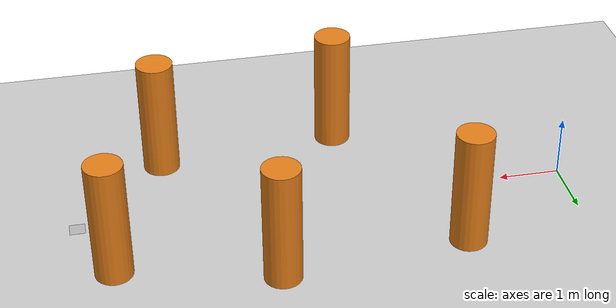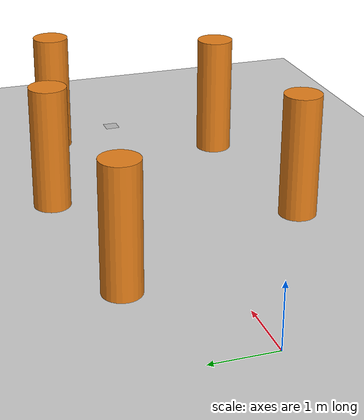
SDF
<?xml version="1.0" encoding="UTF-8"?>
<sdf version="1.9">
  <world name="obstacle_course">
    <physics type="ode">
      <max_step_size>0.004</max_step_size>
      <real_time_factor>1.0</real_time_factor>
      <real_time_update_rate>250</real_time_update_rate>
    </physics>
    <gravity>0 0 -9.8</gravity>
    <magnetic_field>6e-06 2.3e-05 -4.2e-05</magnetic_field>
    <atmosphere type="adiabatic"/>
    <scene>
      <grid>false</grid>
      <ambient>0.4 0.4 0.4 1</ambient>
      <background>0.7 0.7 0.7 1</background>
      <shadows>true</shadows>
    </scene>

    <model name="ground_plane">
      <static>true</static>
      <link name="link">
        <collision name="collision">
          <geometry>
            <plane>
              <normal>0 0 1</normal>
              <size>1 1</size>
            </plane>
          </geometry>
          <surface>
            <friction><ode/></friction>
            <bounce/>
            <contact/>
          </surface>
        </collision>
        <visual name="visual">
          <geometry>
            <plane>
              <normal>0 0 1</normal>
              <size>500 500</size>
            </plane>
          </geometry>
          <material>
            <ambient>0.8 0.8 0.8 1</ambient>
            <diffuse>0.8 0.8 0.8 1</diffuse>
            <specular>0.8 0.8 0.8 1</specular>
          </material>
        </visual>
        <pose>0 0 0 0 0 0</pose>
        <inertial>
          <pose>0 0 0 0 0 0</pose>
          <mass>1</mass>
          <inertia><ixx>1</ixx><ixy>0</ixy><ixz>0</ixz><iyy>1</iyy><iyz>0</iyz><izz>1</izz></inertia>
        </inertial>
        <enable_wind>false</enable_wind>
      </link>
      <pose>0 0 0 0 0 0</pose>
      <self_collide>false</self_collide>
    </model>

    <light name="sunUTC" type="directional">
      <pose>0 0 500 0 0 0</pose>
      <cast_shadows>true</cast_shadows>
      <intensity>1</intensity>
      <direction>0.001 0.625 -0.78</direction>
      <diffuse>0.904 0.904 0.904 1</diffuse>
      <specular>0.271 0.271 0.271 1</specular>
      <attenuation>
        <range>2000</range>
        <linear>0</linear>
        <constant>1</constant>
        <quadratic>0</quadratic>
      </attenuation>
      <spot>
        <inner_angle>0</inner_angle>
        <outer_angle>0</outer_angle>
        <falloff>0</falloff>
      </spot>
    </light>

    <spherical_coordinates>
      <surface_model>EARTH_WGS84</surface_model>
      <world_frame_orientation>ENU</world_frame_orientation>
      <latitude_deg>47.397971057728974</latitude_deg>
      <longitude_deg>8.546163739800146</longitude_deg>
      <elevation>0</elevation>
    </spherical_coordinates>

    <model name="pylon_1">
      <static>true</static>
      <pose>2 1.5 1 0 0 0</pose>
      <link name="link">
        <collision name="collision">
          <geometry>
            <cylinder><radius>0.3</radius><length>2</length></cylinder>
          </geometry>
          <surface>
            <friction><ode/></friction>
            <bounce/>
            <contact/>
          </surface>
        </collision>
        <visual name="visual">
          <geometry>
            <cylinder><radius>0.3</radius><length>2</length></cylinder>
          </geometry>
          <material>
            <ambient>0.9 0.5 0.1 1</ambient>
            <diffuse>0.9 0.5 0.1 1</diffuse>
            <specular>0.9 0.5 0.1 1</specular>
          </material>
        </visual>
      </link>
    </model>

    <model name="pylon_2">
      <static>true</static>
      <pose>3.5 -1.8 1 0 0 0</pose>
      <link name="link">
        <collision name="collision">
          <geometry>
            <cylinder><radius>0.3</radius><length>2</length></cylinder>
          </geometry>
          <surface>
            <friction><ode/></friction>
            <bounce/>
            <contact/>
          </surface>
        </collision>
        <visual name="visual">
          <geometry>
            <cylinder><radius>0.3</radius><length>2</length></cylinder>
          </geometry>
          <material>
            <ambient>0.9 0.5 0.1 1</ambient>
            <diffuse>0.9 0.5 0.1 1</diffuse>
            <specular>0.9 0.5 0.1 1</specular>
          </material>
        </visual>
      </link>
    </model>

    <model name="pylon_3">
      <static>true</static>
      <pose>5 1.8 1 0 0 0</pose>
      <link name="link">
        <collision name="collision">
          <geometry>
            <cylinder><radius>0.3</radius><length>2</length></cylinder>
          </geometry>
          <surface>
            <friction><ode/></friction>
            <bounce/>
            <contact/>
          </surface>
        </collision>
        <visual name="visual">
          <geometry>
            <cylinder><radius>0.3</radius><length>2</length></cylinder>
          </geometry>
          <material>
            <ambient>0.9 0.5 0.1 1</ambient>
            <diffuse>0.9 0.5 0.1 1</diffuse>
            <specular>0.9 0.5 0.1 1</specular>
          </material>
        </visual>
      </link>
    </model>

    <model name="pylon_4">
      <static>true</static>
      <pose>6.5 -1.5 1 0 0 0</pose>
      <link name="link">
        <collision name="collision">
          <geometry>
            <cylinder><radius>0.3</radius><length>2</length></cylinder>
          </geometry>
          <surface>
            <friction><ode/></friction>
            <bounce/>
            <contact/>
          </surface>
        </collision>
        <visual name="visual">
          <geometry>
            <cylinder><radius>0.3</radius><length>2</length></cylinder>
          </geometry>
          <material>
            <ambient>0.9 0.5 0.1 1</ambient>
            <diffuse>0.9 0.5 0.1 1</diffuse>
            <specular>0.9 0.5 0.1 1</specular>
          </material>
        </visual>
      </link>
    </model>

    <model name="pylon_5">
      <static>true</static>
      <pose>7.5 1.2 1 0 0 0</pose>
      <link name="link">
        <collision name="collision">
          <geometry>
            <cylinder><radius>0.3</radius><length>2</length></cylinder>
          </geometry>
          <surface>
            <friction><ode/></friction>
            <bounce/>
            <contact/>
          </surface>
        </collision>
        <visual name="visual">
          <geometry>
            <cylinder><radius>0.3</radius><length>2</length></cylinder>
          </geometry>
          <material>
            <ambient>0.9 0.5 0.1 1</ambient>
            <diffuse>0.9 0.5 0.1 1</diffuse>
            <specular>0.9 0.5 0.1 1</specular>
          </material>
        </visual>
      </link>
    </model>

    <include>
      <uri>model://aruco_marker_0</uri>
      <name>aruco_marker_0</name>
      <pose>8 0 0.005 0 0 0</pose>
    </include>
  </world>
</sdf>

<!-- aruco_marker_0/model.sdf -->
<sdf version="1.9">
  <model name="aruco_marker_0">
    <static>true</static>
    <link name="link">
      <visual name="visual">
        <geometry>
          <plane>
            <normal>0 0 1</normal>
            <size>0.25 0.25</size>
          </plane>
        </geometry>
        <material>
          <pbr>
            <metal>
              <albedo_map>model://aruco_marker_0/materials/textures/aruco_marker_0.png</albedo_map>
              <emissive_map>model://aruco_marker_0/materials/textures/aruco_marker_0.png</emissive_map>
              <roughness>1.0</roughness>
              <metalness>0.0</metalness>
            </metal>
          </pbr>
        </material>
      </visual>
    </link>
  </model>
</sdf>
